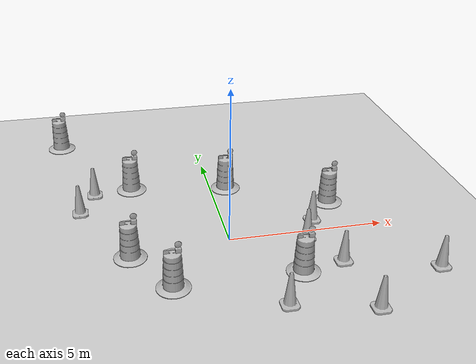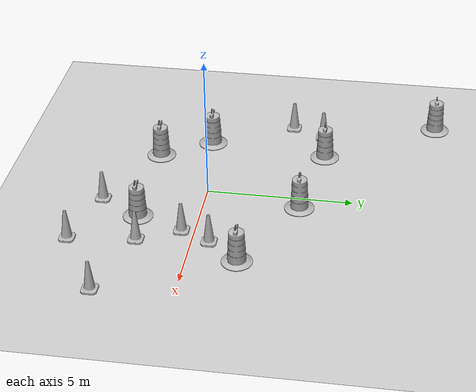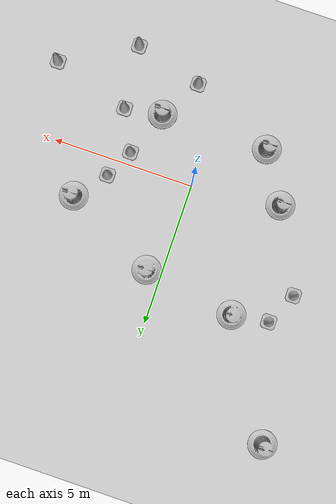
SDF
<sdf version="1.7">
 <world name="default">
  <light name="sun" type="directional">
   <pose>0 0 10 0 -0 0</pose>
   <diffuse>0.8 0.8 0.8 1</diffuse>
   <specular>0.2 0.2 0.2 1</specular>
   <attenuation>
    <range>1000</range>
    <constant>0.9</constant>
    <linear>0.01</linear>
    <quadratic>0.001</quadratic>
   </attenuation>
   <direction>-0.5 0.1 -0.9</direction>
   <spot><inner_angle>0</inner_angle><outer_angle>0</outer_angle><falloff>0</falloff></spot>
  </light>
  <model name="ground_plane">
   <static>1</static>
   <link name="link">
    <collision name="collision">
     <geometry><plane><normal>0 0 1</normal><size>100 100</size></plane></geometry>
     <surface>
      <contact><collide_bitmask>65535</collide_bitmask></contact>
      <friction><ode><mu>100</mu><mu2>50</mu2></ode></friction>
     </surface>
    </collision>
    <visual name="visual">
     <cast_shadows>0</cast_shadows>
     <geometry><plane><normal>0 0 1</normal><size>100 100</size></plane></geometry>
     <material>
      <script><uri>file://media/materials/scripts/gazebo.material</uri><name>Gazebo/Grey</name></script>
     </material>
    </visual>
   </link>
  </model>
  <gravity>0 0 -9.8</gravity>
  <magnetic_field>6e-06 2.3e-05 -4.2e-05</magnetic_field>
  <atmosphere type="adiabatic"/>
  <physics type="ode">
   <max_step_size>0.001</max_step_size>
   <real_time_factor>1</real_time_factor>
   <real_time_update_rate>1000</real_time_update_rate>
  </physics>
  <scene><ambient>0.4 0.4 0.4 1</ambient><background>0.7 0.7 0.7 1</background><shadows>1</shadows></scene>
  <audio><device>default</device></audio>
  <spherical_coordinates>
   <surface_model>EARTH_WGS84</surface_model>
   <latitude_deg>0</latitude_deg>
   <longitude_deg>0</longitude_deg>
   <elevation>0</elevation>
   <heading_deg>0</heading_deg>
  </spherical_coordinates>
  <model name="Construction Barrel">
   <link name="link">
    <inertial>
     <pose>0 0 0.4 0 -0 0</pose>
     <mass>500</mass>
     <inertia><ixx>51.2096</ixx><iyy>51.2096</iyy><izz>25</izz><ixy>0</ixy><ixz>0</ixz><iyz>0</iyz></inertia>
    </inertial>
    <collision name="collision">
     <geometry><mesh><uri>model://construction_barrel/meshes/construction_barrel.dae</uri></mesh></geometry>
    </collision>
    <visual name="visual">
     <geometry><mesh><uri>model://construction_barrel/meshes/construction_barrel.dae</uri></mesh></geometry>
    </visual>
   </link>
   <pose>-3.12376 -0.363767 -0 0 -0 -2.4e-05</pose>
  </model>
  <model name="Construction Cone">
   <link name="link">
    <collision name="collision">
     <geometry>
      <mesh><scale>10 10 10</scale><uri>model://construction_cone/meshes/construction_cone.dae</uri></mesh>
     </geometry>
    </collision>
    <visual name="visual">
     <geometry>
      <mesh><scale>10 10 10</scale><uri>model://construction_cone/meshes/construction_cone.dae</uri></mesh>
     </geometry>
    </visual>
    <inertial>
     <inertia><ixx>1</ixx><ixy>0</ixy><ixz>0</ixz><iyy>1</iyy><iyz>0</iyz><izz>1</izz></inertia>
     <mass>1</mass>
    </inertial>
   </link>
   <pose>2.38225 -0.433472 0 -0 -0 -0</pose>
  </model>
  <model name="Construction Barrel_0">
   <link name="link">
    <inertial>
     <pose>0 0 0.4 0 -0 0</pose>
     <mass>500</mass>
     <inertia><ixx>51.2096</ixx><iyy>51.2096</iyy><izz>25</izz><ixy>0</ixy><ixz>0</ixz><iyz>0</iyz></inertia>
    </inertial>
    <collision name="collision">
     <geometry><mesh><uri>model://construction_barrel/meshes/construction_barrel.dae</uri></mesh></geometry>
    </collision>
    <visual name="visual">
     <geometry><mesh><uri>model://construction_barrel/meshes/construction_barrel.dae</uri></mesh></geometry>
    </visual>
   </link>
   <pose>1.75854 -2.04332 -0 0 -0 -2.2e-05</pose>
  </model>
  <model name="Construction Barrel_1">
   <link name="link">
    <inertial>
     <pose>0 0 0.4 0 -0 0</pose>
     <mass>500</mass>
     <inertia><ixx>51.2096</ixx><iyy>51.2096</iyy><izz>25</izz><ixy>0</ixy><ixz>0</ixz><iyz>0</iyz></inertia>
    </inertial>
    <collision name="collision">
     <geometry><mesh><uri>model://construction_barrel/meshes/construction_barrel.dae</uri></mesh></geometry>
    </collision>
    <visual name="visual">
     <geometry><mesh><uri>model://construction_barrel/meshes/construction_barrel.dae</uri></mesh></geometry>
    </visual>
   </link>
   <pose>0.535875 3.24343 -0 0 -0 -2.1e-05</pose>
  </model>
  <model name="Construction Cone_0">
   <link name="link">
    <collision name="collision">
     <geometry>
      <mesh><scale>10 10 10</scale><uri>model://construction_cone/meshes/construction_cone.dae</uri></mesh>
     </geometry>
    </collision>
    <visual name="visual">
     <geometry>
      <mesh><scale>10 10 10</scale><uri>model://construction_cone/meshes/construction_cone.dae</uri></mesh>
     </geometry>
    </visual>
    <inertial>
     <inertia><ixx>1</ixx><ixy>0</ixy><ixz>0</ixz><iyy>1</iyy><iyz>0</iyz><izz>1</izz></inertia>
     <mass>1</mass>
    </inertial>
   </link>
   <pose>2.87667 0.575014 -0 0 -1e-06 0</pose>
  </model>
  <model name="Construction Cone_1">
   <link name="link">
    <collision name="collision">
     <geometry>
      <mesh><scale>10 10 10</scale><uri>model://construction_cone/meshes/construction_cone.dae</uri></mesh>
     </geometry>
    </collision>
    <visual name="visual">
     <geometry>
      <mesh><scale>10 10 10</scale><uri>model://construction_cone/meshes/construction_cone.dae</uri></mesh>
     </geometry>
    </visual>
    <inertial>
     <inertia><ixx>1</ixx><ixy>0</ixy><ixz>0</ixz><iyy>1</iyy><iyz>0</iyz><izz>1</izz></inertia>
     <mass>1</mass>
    </inertial>
   </link>
   <pose>3.07451 -1.81213 -0 0 -0 0</pose>
  </model>
  <model name="Construction Cone_2">
   <link name="link">
    <collision name="collision">
     <geometry>
      <mesh><scale>10 10 10</scale><uri>model://construction_cone/meshes/construction_cone.dae</uri></mesh>
     </geometry>
    </collision>
    <visual name="visual">
     <geometry>
      <mesh><scale>10 10 10</scale><uri>model://construction_cone/meshes/construction_cone.dae</uri></mesh>
     </geometry>
    </visual>
    <inertial>
     <inertia><ixx>1</ixx><ixy>0</ixy><ixz>0</ixz><iyy>1</iyy><iyz>0</iyz><izz>1</izz></inertia>
     <mass>1</mass>
    </inertial>
   </link>
   <pose>-4.01627 3.57313 0 -1e-06 0 0</pose>
  </model>
  <model name="Construction Barrel_2">
   <link name="link">
    <inertial>
     <pose>0 0 0.4 0 -0 0</pose>
     <mass>500</mass>
     <inertia><ixx>51.2096</ixx><iyy>51.2096</iyy><izz>25</izz><ixy>0</ixy><ixz>0</ixz><iyz>0</iyz></inertia>
    </inertial>
    <collision name="collision">
     <geometry><mesh><uri>model://construction_barrel/meshes/construction_barrel.dae</uri></mesh></geometry>
    </collision>
    <visual name="visual">
     <geometry><mesh><uri>model://construction_barrel/meshes/construction_barrel.dae</uri></mesh></geometry>
    </visual>
   </link>
   <pose>-2.7304 3.76371 0 0 0 -1.5e-05</pose>
  </model>
  <model name="Construction Cone_3">
   <link name="link">
    <collision name="collision">
     <geometry>
      <mesh><scale>10 10 10</scale><uri>model://construction_cone/meshes/construction_cone.dae</uri></mesh>
     </geometry>
    </collision>
    <visual name="visual">
     <geometry>
      <mesh><scale>10 10 10</scale><uri>model://construction_cone/meshes/construction_cone.dae</uri></mesh>
     </geometry>
    </visual>
    <inertial>
     <inertia><ixx>1</ixx><ixy>0</ixy><ixz>0</ixz><iyy>1</iyy><iyz>0</iyz><izz>1</izz></inertia>
     <mass>1</mass>
    </inertial>
   </link>
   <pose>-4.53726 2.44428 -1e-05 -1e-06 0 0</pose>
  </model>
  <model name="Construction Barrel_3">
   <link name="link">
    <inertial>
     <pose>0 0 0.4 0 -0 0</pose>
     <mass>500</mass>
     <inertia><ixx>51.2096</ixx><iyy>51.2096</iyy><izz>25</izz><ixy>0</ixy><ixz>0</ixz><iyz>0</iyz></inertia>
    </inertial>
    <collision name="collision">
     <geometry><mesh><uri>model://construction_barrel/meshes/construction_barrel.dae</uri></mesh></geometry>
    </collision>
    <visual name="visual">
     <geometry><mesh><uri>model://construction_barrel/meshes/construction_barrel.dae</uri></mesh></geometry>
    </visual>
   </link>
   <pose>-2.05867 -2.06008 -1e-06 5e-06 -2e-06 -1.3e-05</pose>
  </model>
  <model name="Construction Cone_4">
   <link name="link">
    <collision name="collision">
     <geometry>
      <mesh><scale>10 10 10</scale><uri>model://construction_cone/meshes/construction_cone.dae</uri></mesh>
     </geometry>
    </collision>
    <visual name="visual">
     <geometry>
      <mesh><scale>10 10 10</scale><uri>model://construction_cone/meshes/construction_cone.dae</uri></mesh>
     </geometry>
    </visual>
    <inertial>
     <inertia><ixx>1</ixx><ixy>0</ixy><ixz>0</ixz><iyy>1</iyy><iyz>0</iyz><izz>1</izz></inertia>
     <mass>1</mass>
    </inertial>
   </link>
   <pose>0.925848 -3.44686 0 -0 -0 -0</pose>
  </model>
  <model name="Construction Barrel_4">
   <link name="link">
    <inertial>
     <pose>0 0 0.4 0 -0 0</pose>
     <mass>500</mass>
     <inertia><ixx>51.2096</ixx><iyy>51.2096</iyy><izz>25</izz><ixy>0</ixy><ixz>0</ixz><iyz>0</iyz></inertia>
    </inertial>
    <collision name="collision">
     <geometry><mesh><uri>model://construction_barrel/meshes/construction_barrel.dae</uri></mesh></geometry>
    </collision>
    <visual name="visual">
     <geometry><mesh><uri>model://construction_barrel/meshes/construction_barrel.dae</uri></mesh></geometry>
    </visual>
   </link>
   <pose>-5.1494 7.60453 0 1e-06 1e-06 -9e-06</pose>
  </model>
  <model name="Construction Barrel_5">
   <link name="link">
    <inertial>
     <pose>0 0 0.4 0 -0 0</pose>
     <mass>500</mass>
     <inertia><ixx>51.2096</ixx><iyy>51.2096</iyy><izz>25</izz><ixy>0</ixy><ixz>0</ixz><iyz>0</iyz></inertia>
    </inertial>
    <collision name="collision">
     <geometry><mesh><uri>model://construction_barrel/meshes/construction_barrel.dae</uri></mesh></geometry>
    </collision>
    <visual name="visual">
     <geometry><mesh><uri>model://construction_barrel/meshes/construction_barrel.dae</uri></mesh></geometry>
    </visual>
   </link>
   <pose>3.75411 1.63372 -2e-06 8e-06 -4e-06 -8e-06</pose>
  </model>
  <model name="Construction Cone_5">
   <link name="link">
    <collision name="collision">
     <geometry>
      <mesh><scale>10 10 10</scale><uri>model://construction_cone/meshes/construction_cone.dae</uri></mesh>
     </geometry>
    </collision>
    <visual name="visual">
     <geometry>
      <mesh><scale>10 10 10</scale><uri>model://construction_cone/meshes/construction_cone.dae</uri></mesh>
     </geometry>
    </visual>
    <inertial>
     <inertia><ixx>1</ixx><ixy>0</ixy><ixz>0</ixz><iyy>1</iyy><iyz>0</iyz><izz>1</izz></inertia>
     <mass>1</mass>
    </inertial>
   </link>
   <pose>3.30296 -4.05764 -0 0 -1e-06 0</pose>
  </model>
  <model name="Construction Cone_6">
   <link name="link">
    <collision name="collision">
     <geometry>
      <mesh><scale>10 10 10</scale><uri>model://construction_cone/meshes/construction_cone.dae</uri></mesh>
     </geometry>
    </collision>
    <visual name="visual">
     <geometry>
      <mesh><scale>10 10 10</scale><uri>model://construction_cone/meshes/construction_cone.dae</uri></mesh>
     </geometry>
    </visual>
    <inertial>
     <inertia><ixx>1</ixx><ixy>0</ixy><ixz>0</ixz><iyy>1</iyy><iyz>0</iyz><izz>1</izz></inertia>
     <mass>1</mass>
    </inertial>
   </link>
   <pose>5.80321 -2.62825 -0 0 -1e-06 0</pose>
  </model>
 </world>
</sdf>
